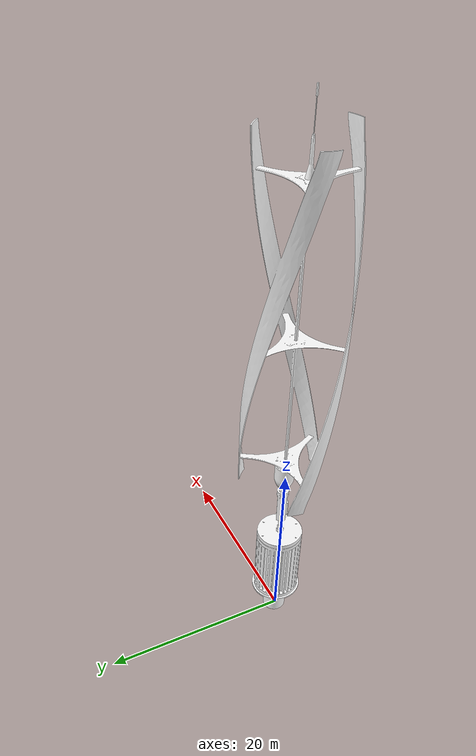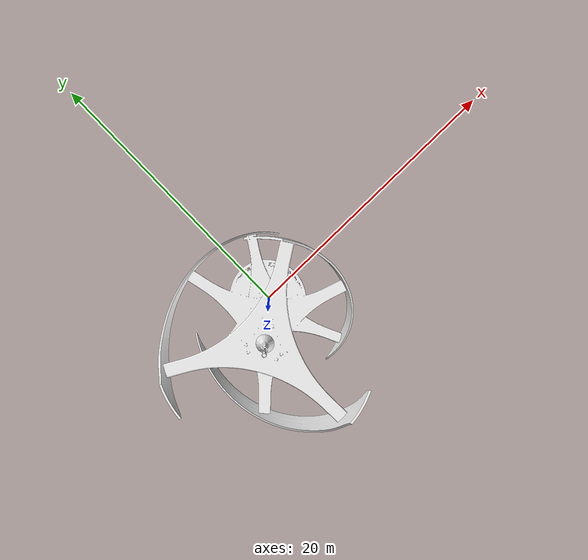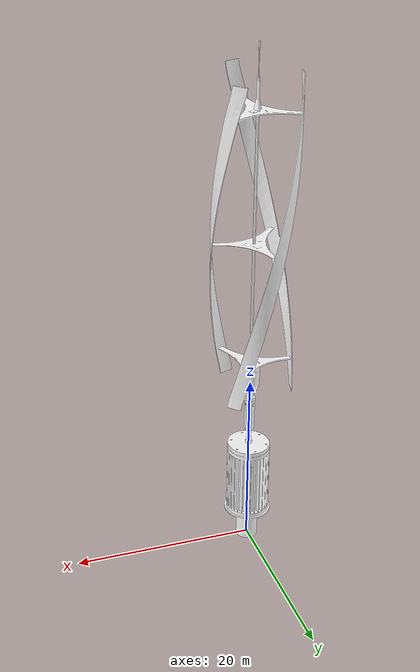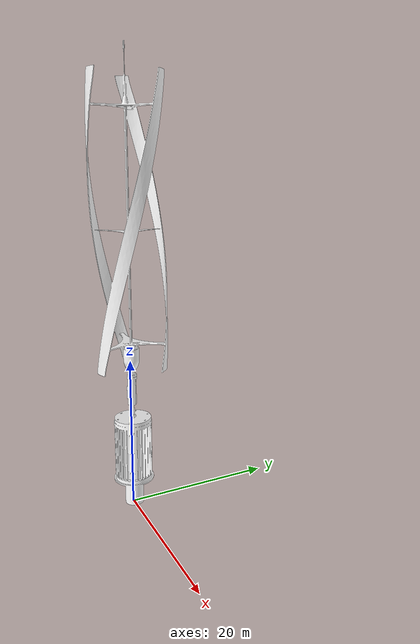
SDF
<?xml version="1.0" ?>
<sdf version="1.5">
  <model name="Turbina Eolica Vertical">
    <static>true</static>
    <link name="link">
      <visual name="turbina_eolica_vertical">
        <cast_shadows>true</cast_shadows>
        <pose>0 0 0 0 0 0</pose>
        <geometry>
          <mesh><uri>model://turbina_eolica/meshes/turbina_vertical.dae</uri></mesh>
        </geometry>
      </visual>
    </link>
  </model>
</sdf>
